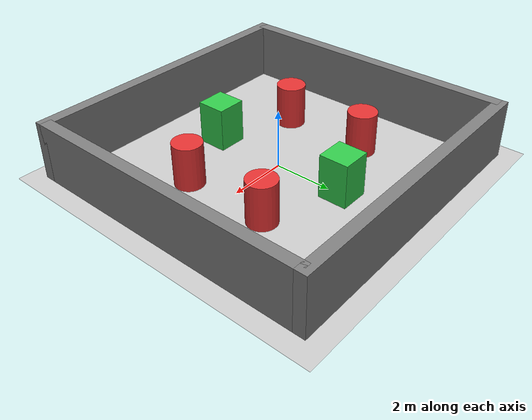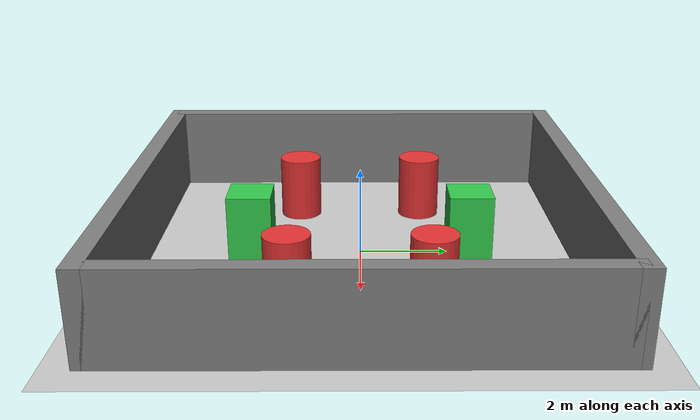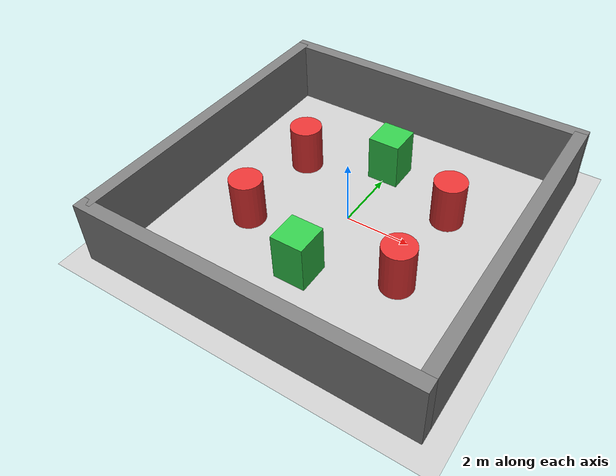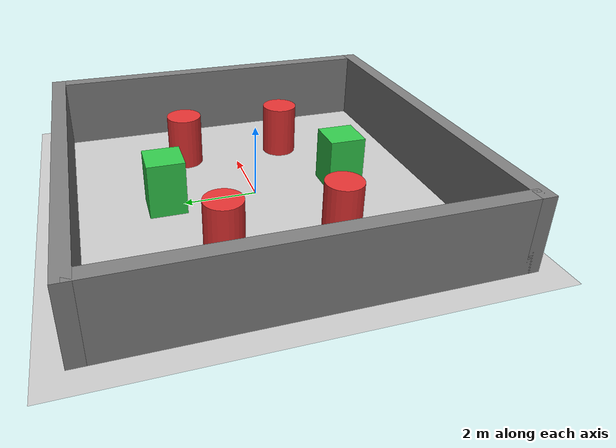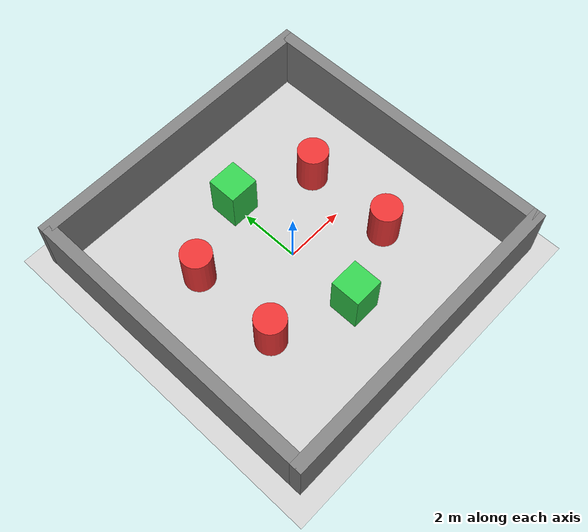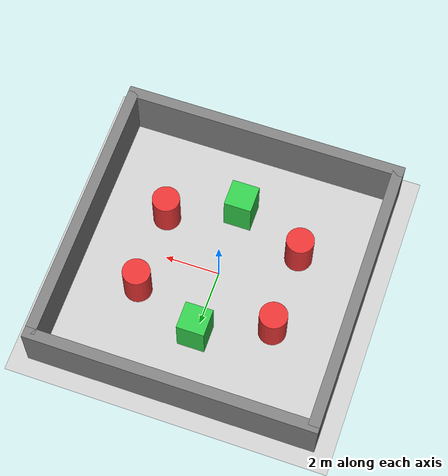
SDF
<?xml version="1.0" ?>
<sdf version="1.6">
  <world name="obstacle_world">
    <!-- Ignition / Modern Gazebo World Plugins -->
    <plugin filename="ignition-gazebo-physics-system" name="ignition::gazebo::systems::Physics"/>
    <plugin filename="ignition-gazebo-user-commands-system" name="ignition::gazebo::systems::UserCommands"/>
    <plugin filename="ignition-gazebo-scene-broadcaster-system" name="ignition::gazebo::systems::SceneBroadcaster"/>
    <plugin filename="ignition-gazebo-sensors-system" name="ignition::gazebo::systems::Sensors">
      <render_engine>ogre2</render_engine>
    </plugin>
    <plugin filename="ignition-gazebo-imu-system" name="ignition::gazebo::systems::Imu"/>

    <!-- Directional Sun Light -->
    <light type="directional" name="sun">
      <cast_shadows>true</cast_shadows>
      <pose>0 0 10 0 0 0</pose>
      <diffuse>0.8 0.8 0.8 1</diffuse>
      <specular>0.2 0.2 0.2 1</specular>
      <attenuation>
        <range>1000</range>
        <constant>0.9</constant>
        <linear>0.01</linear>
        <quadratic>0.001</quadratic>
      </attenuation>
      <direction>-0.5 0.1 -0.9</direction>
    </light>

    <!-- Ground Plane -->
    <model name="ground_plane">
      <static>true</static>
      <link name="link">
        <collision name="collision">
          <geometry>
            <plane>
              <normal>0 0 1</normal>
              <size>100 100</size>
            </plane>
          </geometry>
          <surface>
            <friction>
              <ode>
                <mu>100</mu>
                <mu2>50</mu2>
              </ode>
            </friction>
          </surface>
        </collision>
        <visual name="visual">
          <cast_shadows>false</cast_shadows>
          <geometry>
            <plane>
              <normal>0 0 1</normal>
              <size>100 100</size>
            </plane>
          </geometry>
          <material>
            <ambient>0.8 0.8 0.8 1</ambient>
            <diffuse>0.8 0.8 0.8 1</diffuse>
            <specular>0.8 0.8 0.8 1</specular>
          </material>
        </visual>
      </link>
    </model>

    <!-- Outer Perimeter Boundary Walls (10m x 10m) -->
    <model name="boundary_north"><static>true</static><pose>0 5 1 0 0 0</pose><link name="l"><collision name="c"><geometry><box><size>10.4 0.4 2.0</size></box></geometry></collision><visual name="v"><geometry><box><size>10.4 0.4 2.0</size></box></geometry><material><ambient>0.4 0.4 0.4 1</ambient><diffuse>0.5 0.5 0.5 1</diffuse></material></visual></link></model>
    <model name="boundary_south"><static>true</static><pose>0 -5 1 0 0 0</pose><link name="l"><collision name="c"><geometry><box><size>10.4 0.4 2.0</size></box></geometry></collision><visual name="v"><geometry><box><size>10.4 0.4 2.0</size></box></geometry><material><ambient>0.4 0.4 0.4 1</ambient><diffuse>0.5 0.5 0.5 1</diffuse></material></visual></link></model>
    <model name="boundary_east"><static>true</static><pose>5 0 1 0 0 0</pose><link name="l"><collision name="c"><geometry><box><size>0.4 10.0 2.0</size></box></geometry></collision><visual name="v"><geometry><box><size>0.4 10.0 2.0</size></box></geometry><material><ambient>0.4 0.4 0.4 1</ambient><diffuse>0.5 0.5 0.5 1</diffuse></material></visual></link></model>
    <model name="boundary_west"><static>true</static><pose>-5 0 1 0 0 0</pose><link name="l"><collision name="c"><geometry><box><size>0.4 10.0 2.0</size></box></geometry></collision><visual name="v"><geometry><box><size>0.4 10.0 2.0</size></box></geometry><material><ambient>0.4 0.4 0.4 1</ambient><diffuse>0.5 0.5 0.5 1</diffuse></material></visual></link></model>

    <!-- Interior Structured Obstacles (Wide Corridors, Clear (0,0) Spawn) -->
    <!-- North Box Obstacle (1.0m x 1.0m) -->
    <model name="box_obs_north">
      <static>true</static>
      <pose>0 2.5 0.75 0 0 0</pose>
      <link name="l">
        <collision name="c"><geometry><box><size>1.0 1.0 1.5</size></box></geometry></collision>
        <visual name="v"><geometry><box><size>1.0 1.0 1.5</size></box></geometry><material><ambient>0.2 0.7 0.3 1</ambient><diffuse>0.2 0.8 0.3 1</diffuse></material></visual>
      </link>
    </model>

    <!-- South Box Obstacle (1.0m x 1.0m) -->
    <model name="box_obs_south">
      <static>true</static>
      <pose>0 -2.5 0.75 0 0 0</pose>
      <link name="l">
        <collision name="c"><geometry><box><size>1.0 1.0 1.5</size></box></geometry></collision>
        <visual name="v"><geometry><box><size>1.0 1.0 1.5</size></box></geometry><material><ambient>0.2 0.7 0.3 1</ambient><diffuse>0.2 0.8 0.3 1</diffuse></material></visual>
      </link>
    </model>

    <!-- 4 Cylindrical Column Obstacles (Radius: 0.5m) -->
    <model name="cylinder_obs_ne">
      <static>true</static>
      <pose>2.5 1.5 0.75 0 0 0</pose>
      <link name="l">
        <collision name="c"><geometry><cylinder><radius>0.5</radius><length>1.5</length></cylinder></geometry></collision>
        <visual name="v"><geometry><cylinder><radius>0.5</radius><length>1.5</length></cylinder></geometry><material><ambient>0.8 0.2 0.2 1</ambient><diffuse>0.9 0.2 0.2 1</diffuse></material></visual>
      </link>
    </model>

    <model name="cylinder_obs_sw">
      <static>true</static>
      <pose>-2.5 -1.5 0.75 0 0 0</pose>
      <link name="l">
        <collision name="c"><geometry><cylinder><radius>0.5</radius><length>1.5</length></cylinder></geometry></collision>
        <visual name="v"><geometry><cylinder><radius>0.5</radius><length>1.5</length></cylinder></geometry><material><ambient>0.8 0.2 0.2 1</ambient><diffuse>0.9 0.2 0.2 1</diffuse></material></visual>
      </link>
    </model>

    <model name="cylinder_obs_se">
      <static>true</static>
      <pose>2.5 -1.5 0.75 0 0 0</pose>
      <link name="l">
        <collision name="c"><geometry><cylinder><radius>0.5</radius><length>1.5</length></cylinder></geometry></collision>
        <visual name="v"><geometry><cylinder><radius>0.5</radius><length>1.5</length></cylinder></geometry><material><ambient>0.8 0.2 0.2 1</ambient><diffuse>0.9 0.2 0.2 1</diffuse></material></visual>
      </link>
    </model>

    <model name="cylinder_obs_nw">
      <static>true</static>
      <pose>-2.5 1.5 0.75 0 0 0</pose>
      <link name="l">
        <collision name="c"><geometry><cylinder><radius>0.5</radius><length>1.5</length></cylinder></geometry></collision>
        <visual name="v"><geometry><cylinder><radius>0.5</radius><length>1.5</length></cylinder></geometry><material><ambient>0.8 0.2 0.2 1</ambient><diffuse>0.9 0.2 0.2 1</diffuse></material></visual>
      </link>
    </model>
  </world>
</sdf>
